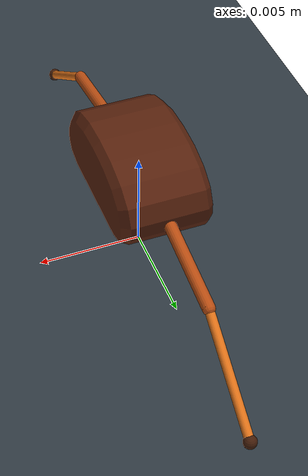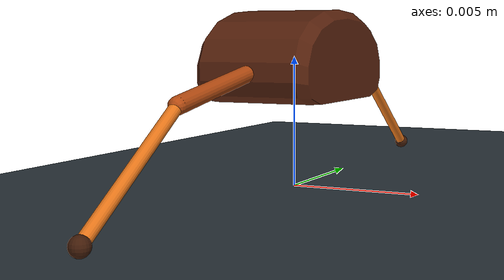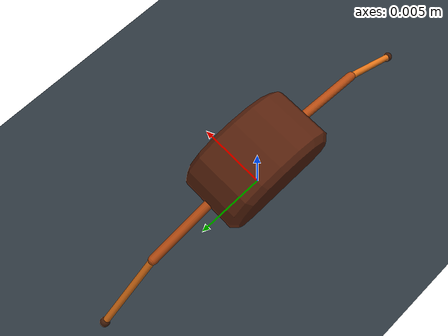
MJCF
<mujoco model="centipede_1">
  <!-- Isolated trunk review; edit configs/segment.json. -->
  <compiler angle="degree" autolimits="true" />
  <option timestep="0.0001" integrator="implicitfast" gravity="0 0 -9.81" iterations="80" tolerance="1e-10" cone="elliptic" />
  <size nuser_geom="2" nuser_actuator="1" />
  <statistic center="0 0 0.003" extent="0.035" />
  <custom>
    <text name="model_config" data="{&quot;segments&quot;:1,&quot;body&quot;:{&quot;shape&quot;:&quot;rounded_trunk&quot;,&quot;width_m&quot;:0.008,&quot;length_m&quot;:0.0044,&quot;height_m&quot;:0.0034,&quot;mass_kg&quot;:7e-05,&quot;shoulder_y_m&quot;:0.0039,&quot;shoulder_z_m&quot;:-0.0006},&quot;leg&quot;:{&quot;upper_length_m&quot;:0.0046,&quot;lower_length_m&quot;:0.0058,&quot;upper_radius_m&quot;:0.0003,&quot;lower_radius_m&quot;:0.00022,&quot;foot_radius_m&quot;:0.00032,&quot;upper_mass_kg&quot;:3e-06,&quot;lower_mass_kg&quot;:2e-06,&quot;foot_mass_kg&quot;:2e-07,&quot;upper_down_deg&quot;:10,&quot;lower_down_deg&quot;:35,&quot;sweep_range_deg&quot;:[-35,35],&quot;lift_range_deg&quot;:[-25,40],&quot;knee_range_deg&quot;:[-20,50],&quot;torque_nm&quot;:2e-05,&quot;damping_nms&quot;:5e-07,&quot;armature_kgm2&quot;:1e-10},&quot;physics&quot;:{&quot;timestep_s&quot;:0.0001,&quot;gravity_m_s2&quot;:9.81,&quot;friction&quot;:[0.8,0.0001,1e-05],&quot;contact_timeconst_s&quot;:0.0004,&quot;limit_timeconst_s&quot;:0.001,&quot;contact_dampratio&quot;:1.0,&quot;spawn_gap_m&quot;:5e-05}}" />
  </custom>
  <default>
    <joint limited="true" damping="5e-07" armature="1e-10" solreflimit="0.001 1" solimplimit="0.95 0.99 0.001" />
    <geom friction="0.8 0.0001 1e-05" condim="3" solref="0.0004 1" solimp="0.95 0.99 0.0001" margin="0" contype="1" conaffinity="1" />
  </default>
  <visual>
    <global offwidth="1200" offheight="900" />
    <map znear="0.005" zfar="30" />
    <scale jointlength="0.3" jointwidth="0.015" />
  </visual>
  <asset>
    <mesh name="trunk_envelope" inertia="convex" vertex="-0.0022 0 0.00136 -0.0022 0.001296 0.0012682 -0.0022 0.002448 0.0009316 -0.0022 0.00324 0.0003808 -0.0022 0.0036 -0.0003536 -0.0022 0.0036 -0.0009656 -0.0022 0.003312 -0.0014552 -0.0022 0.00252 -0.0017 -0.0022 -0.00252 -0.0017 -0.0022 -0.003312 -0.0014552 -0.0022 -0.0036 -0.0009656 -0.0022 -0.0036 -0.0003536 -0.0022 -0.00324 0.0003808 -0.0022 -0.002448 0.0009316 -0.0022 -0.001296 0.0012682 -0.001848 0 0.0017 -0.001848 0.00144 0.001598 -0.001848 0.00272 0.001224 -0.001848 0.0036 0.000612 -0.001848 0.004 -0.000204 -0.001848 0.004 -0.000884 -0.001848 0.00368 -0.001428 -0.001848 0.0028 -0.0017 -0.001848 -0.0028 -0.0017 -0.001848 -0.00368 -0.001428 -0.001848 -0.004 -0.000884 -0.001848 -0.004 -0.000204 -0.001848 -0.0036 0.000612 -0.001848 -0.00272 0.001224 -0.001848 -0.00144 0.001598 0.001848 0 0.0017 0.001848 0.00144 0.001598 0.001848 0.00272 0.001224 0.001848 0.0036 0.000612 0.001848 0.004 -0.000204 0.001848 0.004 -0.000884 0.001848 0.00368 -0.001428 0.001848 0.0028 -0.0017 0.001848 -0.0028 -0.0017 0.001848 -0.00368 -0.001428 0.001848 -0.004 -0.000884 0.001848 -0.004 -0.000204 0.001848 -0.0036 0.000612 0.001848 -0.00272 0.001224 0.001848 -0.00144 0.001598 0.0022 0 0.00136 0.0022 0.001296 0.0012682 0.0022 0.002448 0.0009316 0.0022 0.00324 0.0003808 0.0022 0.0036 -0.0003536 0.0022 0.0036 -0.0009656 0.0022 0.003312 -0.0014552 0.0022 0.00252 -0.0017 0.0022 -0.00252 -0.0017 0.0022 -0.003312 -0.0014552 0.0022 -0.0036 -0.0009656 0.0022 -0.0036 -0.0003536 0.0022 -0.00324 0.0003808 0.0022 -0.002448 0.0009316 0.0022 -0.001296 0.0012682" smoothnormal="true" />
    <texture type="skybox" builtin="gradient" width="256" height="1536" rgb1="0.10 0.15 0.20" rgb2="0.35 0.40 0.44" />
    <texture name="ground" type="2d" builtin="checker" width="512" height="512" rgb1="0.16 0.20 0.23" rgb2="0.20 0.24 0.27" />
    <material name="ground" texture="ground" texrepeat="80 80" reflectance="0" />
  </asset>
  <worldbody>
    <light pos="0.02 -0.02 0.1" dir="0 0 -1" diffuse="0.9 0.9 0.9" directional="true" castshadow="false" />
    <geom name="floor" type="plane" size="0.5 0.5 0.001" material="ground" user="-1 0" />
    <body name="segment_00" pos="0 0 0.0050955249481">
      <freejoint name="root" />
      <geom name="segment_00_body" type="mesh" pos="0 0 0" mass="7e-05" rgba="0.34 0.13 0.05 1" user="0 1" mesh="trunk_envelope" />
      <site name="segment_00_center" pos="0 0 0" size="0.00015" rgba="0 0 0 0" group="3" />
      <body name="segment_00_left_upper" pos="0 0.0039 -0.0006">
        <joint name="segment_00_left_sweep" type="hinge" axis="0 0 -1" range="-35 35" />
        <joint name="segment_00_left_lift" type="hinge" axis="1 0 0" range="-25 40" />
        <geom name="segment_00_left_upper_geom" type="capsule" fromto="0 0 0 0 0.00453011566386 -0.000798781617268" size="0.0003" mass="3e-06" rgba="0.72 0.30 0.07 1" user="0 2" />
        <body name="segment_00_left_lower" pos="0 0.00453011566386 -0.000798781617268">
          <joint name="segment_00_left_knee" type="hinge" axis="-1 0 0" range="-20 50" />
          <geom name="segment_00_left_lower_geom" type="capsule" fromto="0 0 0 0 0.00475108185688 -0.00332674333084" size="0.00022" mass="2e-06" rgba="0.90 0.46 0.10 1" user="0 2" />
          <geom name="segment_00_left_foot" type="sphere" pos="0 0.00475108185688 -0.00332674333084" size="0.00032" mass="2e-07" rgba="0.26 0.11 0.035 1" user="0 3" />
          <site name="segment_00_left_tip" pos="0 0.00475108185688 -0.00332674333084" size="0.00015" rgba="0 0 0 0" group="3" />
        </body>
      </body>
      <body name="segment_00_right_upper" pos="0 -0.0039 -0.0006">
        <joint name="segment_00_right_sweep" type="hinge" axis="0 0 1" range="-35 35" />
        <joint name="segment_00_right_lift" type="hinge" axis="-1 0 0" range="-25 40" />
        <geom name="segment_00_right_upper_geom" type="capsule" fromto="0 0 0 0 -0.00453011566386 -0.000798781617268" size="0.0003" mass="3e-06" rgba="0.72 0.30 0.07 1" user="0 2" />
        <body name="segment_00_right_lower" pos="0 -0.00453011566386 -0.000798781617268">
          <joint name="segment_00_right_knee" type="hinge" axis="1 0 0" range="-20 50" />
          <geom name="segment_00_right_lower_geom" type="capsule" fromto="0 0 0 0 -0.00475108185688 -0.00332674333084" size="0.00022" mass="2e-06" rgba="0.90 0.46 0.10 1" user="0 2" />
          <geom name="segment_00_right_foot" type="sphere" pos="0 -0.00475108185688 -0.00332674333084" size="0.00032" mass="2e-07" rgba="0.26 0.11 0.035 1" user="0 3" />
          <site name="segment_00_right_tip" pos="0 -0.00475108185688 -0.00332674333084" size="0.00015" rgba="0 0 0 0" group="3" />
        </body>
      </body>
    </body>
  </worldbody>
  <actuator>
    <motor name="segment_00_left_sweep_motor" joint="segment_00_left_sweep" gear="2e-05" ctrlrange="-1 1" ctrllimited="true" forcerange="-1 1" forcelimited="true" user="0" />
    <motor name="segment_00_left_lift_motor" joint="segment_00_left_lift" gear="2e-05" ctrlrange="-1 1" ctrllimited="true" forcerange="-1 1" forcelimited="true" user="0" />
    <motor name="segment_00_left_knee_motor" joint="segment_00_left_knee" gear="2e-05" ctrlrange="-1 1" ctrllimited="true" forcerange="-1 1" forcelimited="true" user="0" />
    <motor name="segment_00_right_sweep_motor" joint="segment_00_right_sweep" gear="2e-05" ctrlrange="-1 1" ctrllimited="true" forcerange="-1 1" forcelimited="true" user="0" />
    <motor name="segment_00_right_lift_motor" joint="segment_00_right_lift" gear="2e-05" ctrlrange="-1 1" ctrllimited="true" forcerange="-1 1" forcelimited="true" user="0" />
    <motor name="segment_00_right_knee_motor" joint="segment_00_right_knee" gear="2e-05" ctrlrange="-1 1" ctrllimited="true" forcerange="-1 1" forcelimited="true" user="0" />
  </actuator>
</mujoco>
